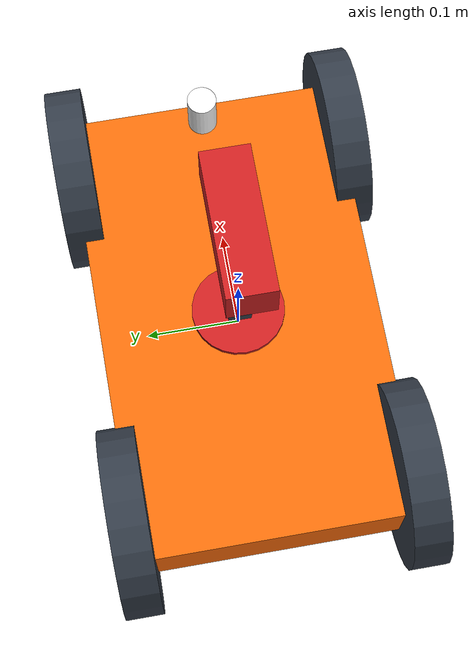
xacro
<?xml version="1.0" ?>
<robot name="robot_xacro" xmlns:xacro="https://www.ros.org/wiki/xacro">

 <!-- Define macros -->
 <xacro:include filename="$(find assignment2)/urdf/materials.xacro" />
 <xacro:include filename="$(find assignment2)/urdf/robot.gazebo" />

 <xacro:property name="length_wheel" value="0.04" />
 <xacro:property name="radius_wheel" value="0.1" />

 <xacro:macro name="cylinder_inertia" params="mass r l">
 	<inertia ixx="${mass*(3*r*r+l*l)/12}" ixy = "0" ixz = "0"
                 iyy="${mass*(3*r*r+l*l)/12}" iyz = "0" izz="${mass*(r*r)/2}" />
 </xacro:macro>

 <xacro:macro name="wheel_geometry">
  <geometry>
    <cylinder length="${length_wheel}" radius="${radius_wheel}"/>
  </geometry>
 </xacro:macro>

 <!-- base link -->
 <link name="link_chassis">
    <!-- pose and inertial -->
    <pose>0 0 0 0 0 0</pose>
    <inertial>
      <mass value="5"/>
      <origin rpy="0 0 0" xyz="0 0 0"/>
      <inertia ixx="0.0395416666667" ixy="0" ixz="0" iyy="0.106208333333" iyz="0" izz="0.106208333333"/>
    </inertial>
    <collision name="collision_chassis">
      <geometry>
        <box size="0.5 0.3 0.07"/>
      </geometry>
    </collision>
    <visual>
      <origin rpy="0 0 0" xyz="0 0 0"/>
      <geometry>
        <box size="0.5 0.3 0.07"/>
      </geometry>
      <material name="orange"/>
    </visual>
 </link>

 <!-- Wheel's macros -->
 <xacro:macro name="link_wheel" params="name">
	<link name="${name}">
          <inertial>
              <mass value="0.2"/>
              <origin rpy="0 1.5707 1.5707" xyz="0 0 0"/>
              <xacro:cylinder_inertia mass="0.2" r="0.1" l="0.04" />
          </inertial>
          <collision name="${name}_collision">
              <origin rpy="0 1.5707 1.5707" xyz="0 0 0"/>
              <xacro:wheel_geometry />
          </collision>
            <visual name="${name}_visual">
              <origin rpy="0 1.5707 1.5707" xyz="0 0 0"/>
              <xacro:wheel_geometry />
              <material name="blue"/>
            </visual>
        </link>
 </xacro:macro>

 <xacro:macro name="joint_wheel" params="name child origin_xyz">
      <joint name="${name}" type="continuous">
        <origin rpy="0 0 0" xyz="${origin_xyz}"/>
        <child link="${child}"/>
        <parent link="link_chassis"/>
        <axis rpy="0 0 0" xyz="0 1 0"/>
        <limit effort="10000" velocity="1000"/>
        <joint_properties damping="1.0" friction="1.0"/>
      </joint>
 </xacro:macro>

  <!-- Create wheels -->

  <xacro:link_wheel name="link_front_right_wheel" />
  <xacro:link_wheel name="link_front_left_wheel" />
  <xacro:link_wheel name="link_back_right_wheel" />
  <xacro:link_wheel name="link_back_left_wheel" />

  <!-- Create wheels' joints -->

  <xacro:joint_wheel name = "joint_front_right_wheel"  child = "link_front_right_wheel"  origin_xyz = "0.2 0.15 0"/>
  <xacro:joint_wheel name = "joint_front_left_wheel"   child = "link_front_left_wheel"   origin_xyz = "0.2 -0.15 0"/>
  <xacro:joint_wheel name = "joint_back_right_wheel"  child = "link_back_right_wheel"  origin_xyz = "-0.2 0.15 0"/>
  <xacro:joint_wheel name = "joint_back_left_wheel"   child = "link_back_left_wheel"   origin_xyz = "-0.2 -0.15 0"/>

  <!-- Arm definition -->

  <link name="arm_base_link">
     <inertial>
        <mass value = "0.1"/>
        <origin xyz = "0 0 0" rpy = "0 0 0" />
  	<inertia ixx = "0.0000416666667" ixy = "0" ixz = "0" iyy = "0.0000416666667" iyz = "0" izz = "0.0000416666667"/>
     </inertial>
     <collision>
  	<origin xyz = "0 0 0" rpy = "0 0 0"/>
        <geometry>
          <cylinder length = "0.01" radius = "0.05"/>
        </geometry>
     </collision>
     <visual>
        <origin xyz = "0 0 0" rpy = "0 0 0"/>
        <geometry>
          <cylinder length = "0.01" radius = "0.05"/>
        </geometry>
        <material name = "red" />
     </visual>
  </link>

  <link name="arm_link1">
     <inertial>
        <mass value="0.025"/>
  	<origin xyz="0 0 0" rpy="0 0 0" />
  	<inertia ixx="0.000010279" ixy="0" ixz="0" iyy="0.000010279" iyz="0" izz="0.000007225"/>
     </inertial>
     <collision>
        <origin xyz="0 0 0" rpy="0 0 0"/>
        <geometry>
        <box size="0.025 0.025 0.2"/>
        </geometry>
     </collision>
     <visual>
        <origin xyz="0 0 0" rpy="0 0 0"/>
        <geometry>
        <box size="0.025 0.025 0.2"/>
        </geometry>
        <material name="blue" />
     </visual>
  </link>

  <!-- Arm's joint definition -->

  <joint name = "arm_base_joint" type = "continuous">
  	<axis rpy="0 0 0" xyz="0 0 1"/>
  	<origin rpy="0 0 0" xyz="0 0 0.035"/>
  	<parent link="link_chassis"/>
  	<child link="arm_base_link"/>
  	<limit effort="10000" velocity="1000"/>
        <joint_properties damping="1.0" friction="1.0"/>
  </joint>

  <joint name="arm_joint1" type="fixed">
  	<axis rpy="0 0 0" xyz="0 1 0"/>
  	<origin rpy="0 0 0" xyz="0 0 0.1"/>
  	<parent link="arm_base_link"/>
  	<child link="arm_link1"/>
  </joint>

  <!-- Sensors definition -->

  <link name="laser_link">
     <collision>
        <origin xyz="0 0 0" rpy="0 0 0"/>
	      <geometry>
	        <cylinder length="0.05" radius="0.016"/>
	      </geometry>
     </collision>

     <visual>
        <origin xyz="0 0 0" rpy="0 0 0"/>
	      <geometry>
          <cylinder length="0.05" radius="0.016"/>
	      </geometry>
	      <material name="white"/>
     </visual>

     <inertial>
	      <mass value="1e-5" />
	      <origin xyz="0 0 0" rpy="0 0 0"/>
	      <inertia ixx="1e-6" ixy="0" ixz="0" iyy="1e-6" iyz="0" izz="1e-6" />
        </inertial>
  </link>

  <joint name="laser_joint" type="fixed">
  	<axis xyz="0 1 0" />
	  <origin xyz="0.23 0 0.06" rpy="0 0 0"/>
	  <parent link="link_chassis"/>
	  <child link="laser_link"/>
  </joint>

  <link name="camera_link">
      <collision>
         <origin xyz="0 0 0" rpy="0 0 0"/>
	 <geometry>
	 <box size="0.15 0.05 0.05"/>
	 </geometry>
      </collision>
      <visual>
         <origin xyz="0 0 0" rpy="0 0 0"/>
	 <geometry>
	 <box size="0.15 0.05 0.05"/>
	 </geometry>
	 <material name="red" />
      </visual>
      <inertial>
         <mass value="1e-5" />
	 <origin xyz="0 0 0" rpy="0 0 0"/>
	 <inertia ixx="1e-6" ixy="0" ixz="0" iyy="1e-6" iyz="0" izz="1e-6" />
      </inertial>
  </link>

  <joint name="camera_joint" type="revolute">
	<axis rpy="0 0 0" xyz="0 1 0" />
	<origin xyz="0 0 0.12" rpy="0 0 0"/>
	<parent link="arm_link1"/>
	<child link="camera_link"/>
	<limit effort="1000" lower="-3.14" upper="3.14" velocity="0.5"/>
        <joint_properties damping="1.0" friction="1.0"/>
  </joint>

  <!-- Transission definition -->

  <transmission name="arm_base_joint_trans">
	<type>transmission_interface/SimpleTransmission</type>
	<joint name="arm_base_joint">
		<hardwareInterface>hardware_interface/EffortJointInterface</hardwareInterface>
	</joint>
	<actuator name="motor1">
		<hardwareInterface>hardware_interface/EffortJointInterface</hardwareInterface>
		<mechanicalInterface>1</mechanicalInterface>
	</actuator>
  </transmission>

  <transmission name="camera_joint_trans">
	<type>transmission_interface/SimpleTransmission</type>
	<joint name="camera_joint">
		<hardwareInterface>hardware_interface/EffortJointInterface</hardwareInterface>
	</joint>
	<actuator name="motor2">
		<hardwareInterface>hardware_interface/EffortJointInterface</hardwareInterface>
		<mechanicalInterface>1</mechanicalInterface>
	</actuator>
  </transmission>

</robot>

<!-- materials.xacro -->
<robot name="robot_xacro" xmlns:xacro="https://www.ros.org/wiki/xacro" >

  <material name="black">
    <color rgba="0.0 0.0 0.0 1.0"/>
  </material>
  <material name="blue">
    <color rgba="0.203125 0.23828125 0.28515625 1.0"/>
  </material>
  <material name="green">
    <color rgba="0.0 0.8 0.0 1.0"/>
  </material>
  <material name="grey">
    <color rgba="0.2 0.2 0.2 1.0"/>
  </material>
  <material name="orange">
    <color rgba="1.0 0.423529411765 0.0392156862745 1.0"/>
  </material>
  <material name="brown">
    <color rgba="0.870588235294 0.811764705882 0.764705882353 1.0"/>
  </material>
  <material name="red">
    <color rgba="0.80078125 0.12890625 0.1328125 1.0"/>
  </material>
  <material name="white">
    <color rgba="1.0 1.0 1.0 1.0"/>
  </material>

</robot>
